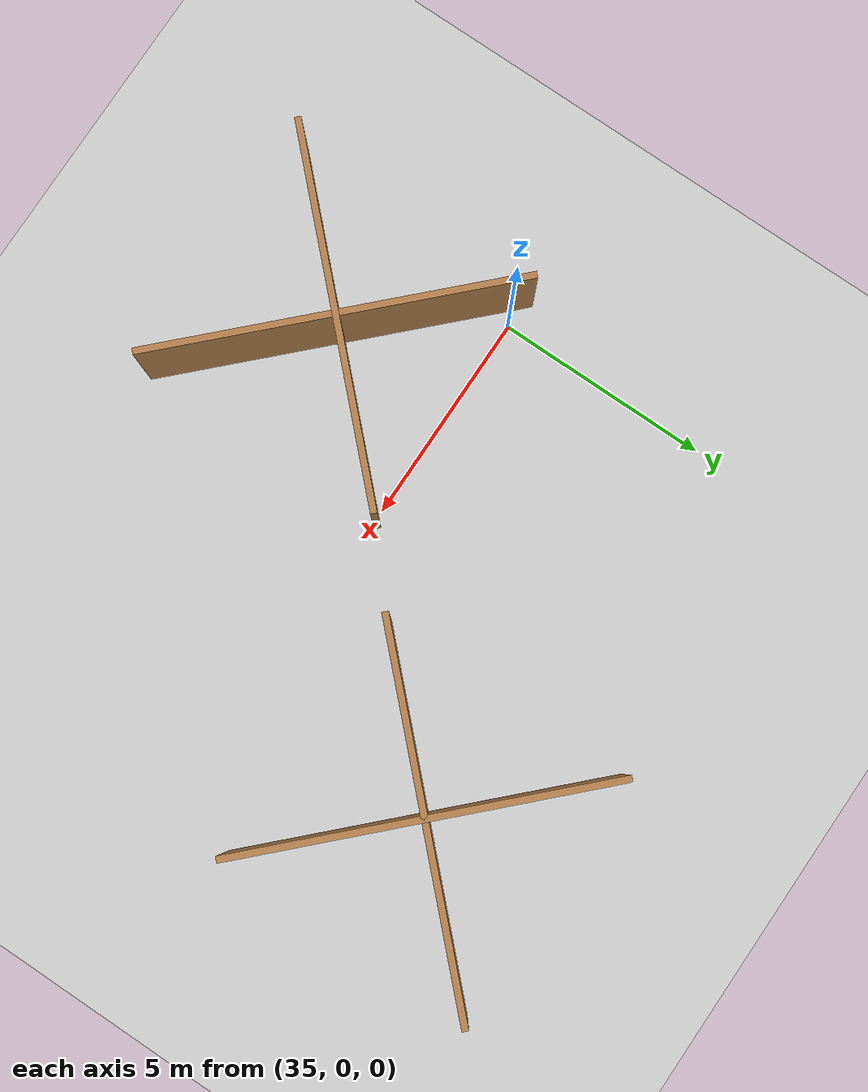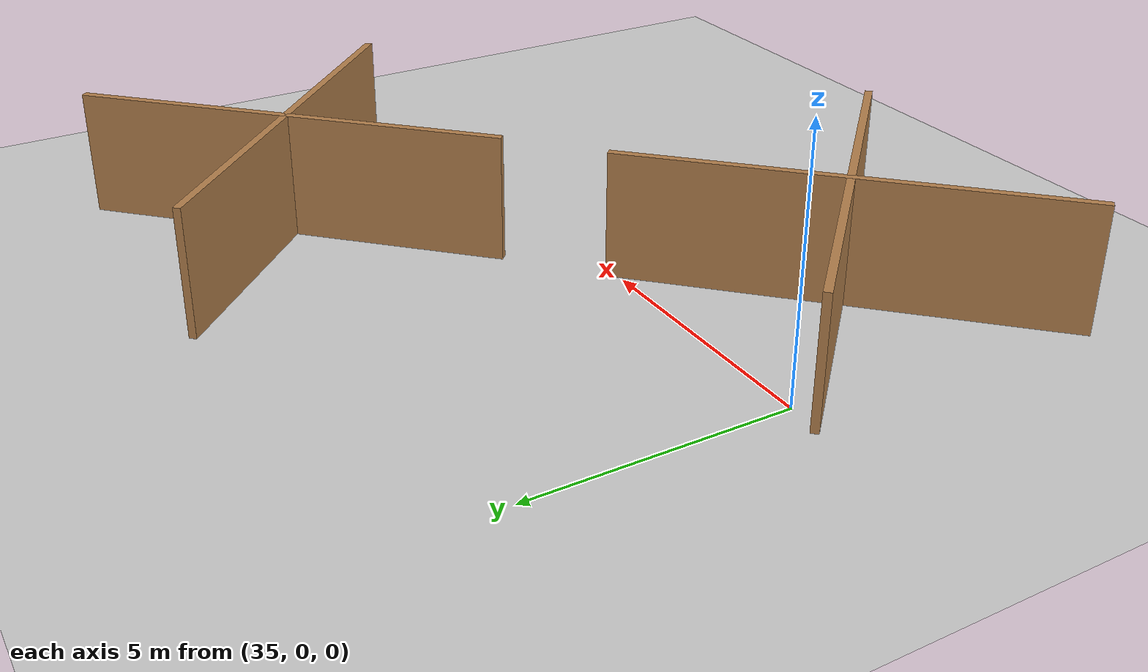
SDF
<sdf version="1.6">
 <world name="default">
  <model name="ground_plane">
   <static>1</static>
   <link name="link">
    <collision name="collision">
     <geometry><plane><normal>0 0 1</normal><size>100 100</size></plane></geometry>
     <surface><friction><ode><mu>100</mu><mu2>50</mu2></ode></friction></surface>
    </collision>
    <visual name="visual">
     <cast_shadows>0</cast_shadows>
     <geometry><plane><normal>0 0 1</normal><size>100 100</size></plane></geometry>
     <material>
      <script><uri>file://media/materials/scripts/gazebo.material</uri><name>Gazebo/Grey</name></script>
     </material>
    </visual>
   </link>
  </model>
  <model name="obs3_9">
   <pose>37.3173 -2.92359 0 0 -0 0</pose>
   <link name="Wall_0">
    <collision name="Wall_0_Collision">
     <geometry><box><size>8.63528 0.15 2.5</size></box></geometry>
     <pose>0 0 1.25 0 -0 0</pose>
    </collision>
    <visual name="Wall_0_Visual">
     <pose>0 0 1.25 0 -0 0</pose>
     <geometry><box><size>8.63528 0.15 2.5</size></box></geometry>
     <material>
      <script><uri>file://media/materials/scripts/gazebo.material</uri><name>Gazebo/Wood</name></script>
      <ambient>1 1 1 1</ambient>
     </material>
    </visual>
    <pose>0 0 0 0 0 -0.785398</pose>
   </link>
   <link name="Wall_2">
    <collision name="Wall_2_Collision">
     <geometry><box><size>8.63528 0.15 2.5</size></box></geometry>
     <pose>0 0 1.25 0 -0 0</pose>
    </collision>
    <visual name="Wall_2_Visual">
     <pose>0 0 1.25 0 -0 0</pose>
     <geometry><box><size>8.63528 0.15 2.5</size></box></geometry>
     <material>
      <script><uri>file://media/materials/scripts/gazebo.material</uri><name>Gazebo/Wood</name></script>
      <ambient>1 1 1 1</ambient>
     </material>
    </visual>
    <pose>0 0 0 0 0 -2.35619</pose>
   </link>
   <static>1</static>
  </model>
  <model name="obs3_12">
   <pose>44.9793 4.52176 0 0 -0 0</pose>
   <link name="Wall_0">
    <collision name="Wall_0_Collision">
     <geometry><box><size>8.63528 0.15 2.5</size></box></geometry>
     <pose>0 0 1.25 0 -0 0</pose>
    </collision>
    <visual name="Wall_0_Visual">
     <pose>0 0 1.25 0 -0 0</pose>
     <geometry><box><size>8.63528 0.15 2.5</size></box></geometry>
     <material>
      <script><uri>file://media/materials/scripts/gazebo.material</uri><name>Gazebo/Wood</name></script>
      <ambient>1 1 1 1</ambient>
     </material>
    </visual>
    <pose>0 0 0 0 0 -0.785398</pose>
   </link>
   <link name="Wall_2">
    <collision name="Wall_2_Collision">
     <geometry><box><size>8.63528 0.15 2.5</size></box></geometry>
     <pose>0 0 1.25 0 -0 0</pose>
    </collision>
    <visual name="Wall_2_Visual">
     <pose>0 0 1.25 0 -0 0</pose>
     <geometry><box><size>8.63528 0.15 2.5</size></box></geometry>
     <material>
      <script><uri>file://media/materials/scripts/gazebo.material</uri><name>Gazebo/Wood</name></script>
      <ambient>1 1 1 1</ambient>
     </material>
    </visual>
    <pose>0 0 0 0 0 -2.35619</pose>
   </link>
   <static>1</static>
  </model>
 </world>
</sdf>
